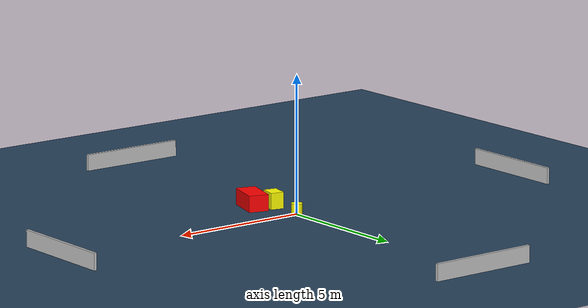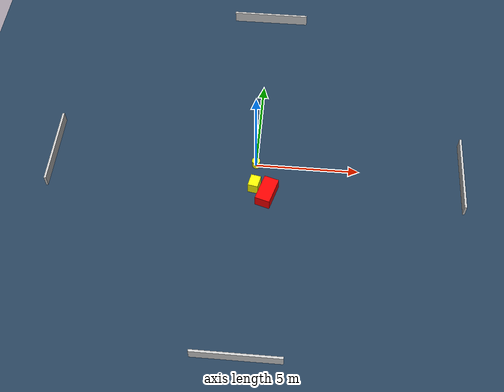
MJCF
<?xml version="1.0" ?>
<mujoco model="generated_environment">
  <option timestep="0.01" integrator="RK4" cone="elliptic"/>
  <default>
    <geom density="1"/>
  </default>
  <asset>
    <texture builtin="gradient" height="3072" name="skybox" rgb1="0.3 0.5 0.7" rgb2="0 0 0" type="skybox" width="512"/>
    <texture builtin="checker" height="300" name="groundplane" rgb1="0.2 0.3 0.4" rgb2="0.1 0.2 0.3" type="2d" width="300"/>
    <material name="groundplane" reflectance="0.2" texrepeat="5 5" texture="groundplane"/>
  </asset>
  <worldbody>
    <light dir="0 0 -1" directional="true" pos="0 0 1.5"/>
    <geom condim="3" friction="0.5 0.005 0.001" material="groundplane" name="floor" pos="0 0 0" size="0 0 0.05" type="plane"/>
    <body name="walls">
      <geom name="wall_1" condim="4" pos="-10.0 0.0 0.3" rgba="0.800000011920929 0.800000011920929 0.800000011920929 1.0" size="0.05 2.0 0.3" type="box"/>
      <geom name="wall_2" condim="4" pos="10.0 0.0 0.3" rgba="0.800000011920929 0.800000011920929 0.800000011920929 1.0" size="0.05 2.0 0.3" type="box"/>
      <geom name="wall_3" condim="4" pos="0.0 -10.0 0.3" rgba="0.800000011920929 0.800000011920929 0.800000011920929 1.0" size="2.0 0.05 0.3" type="box"/>
      <geom name="wall_4" condim="4" pos="0.0 10.0 0.3" rgba="0.800000011920929 0.800000011920929 0.800000011920929 1.0" size="2.0 0.05 0.3" type="box"/>
    </body>
    <body name="robot">
      <joint name="joint_x" type="slide" pos="0 0 0" axis="1 0 0"/>
      <joint name="joint_y" type="slide" pos="0 0 0" axis="0 1 0"/>
      <geom name="robot" type="cylinder" pos="0.0 0.0 0.2" size="0.2 0.2 0.0" mass="5.0" friction="1.0 0.005 0.0001" condim="4" rgba="1.0 1.0 0.0 1.0"/>
    </body>
    <body name="obstacle_1_movable">
      <geom name="obstacle_1_movable" condim="4" pos="0.02805777642237449 -1.306535646849429 0.3" euler="0 0 168.9000961768414" friction="0.0 0.005 0.001" rgba="1.0 1.0 0.0 1.0" size="0.24271715943207697 0.3103524853051052 0.3" type="box" mass="0.1"/>
      <joint type="free"/>
    </body>
    <body name="obstacle_2_static">
      <geom name="obstacle_2_static" condim="4" pos="0.6592113322067635 -1.7236543796600399 0.3" euler="0 0 343.73901463692124" friction="0.0 0.005 0.001" rgba="1.0 0.0 0.0 1.0" size="0.3624474024435468 0.6604957609204382 0.3" type="box"/>
    </body>
  </worldbody>
  <actuator>
    <motor name="actuator_x" joint="joint_x" gear="1" ctrlrange="-1 1"/>
    <motor name="actuator_y" joint="joint_y" gear="1" ctrlrange="-1 1"/>
  </actuator>
</mujoco>
